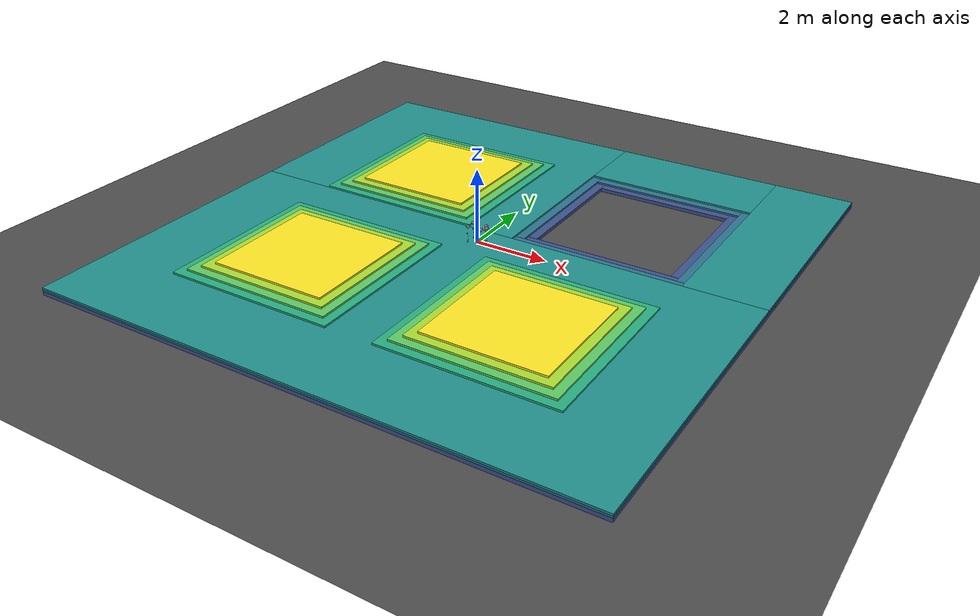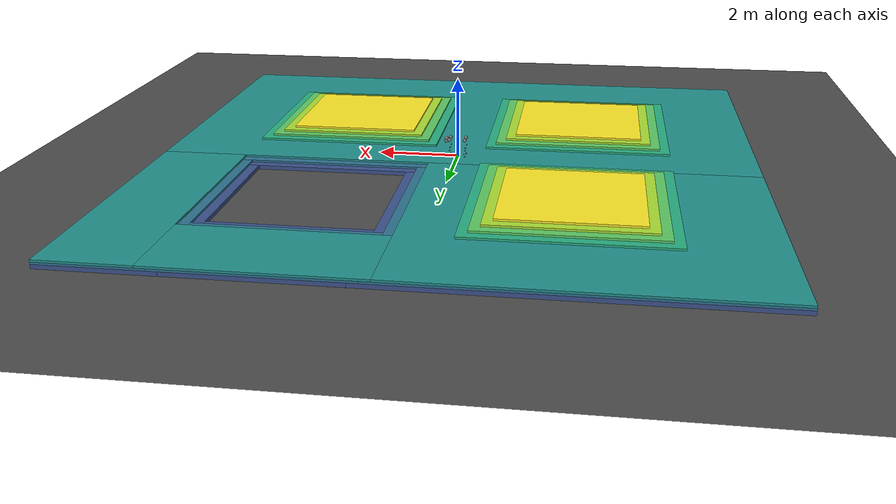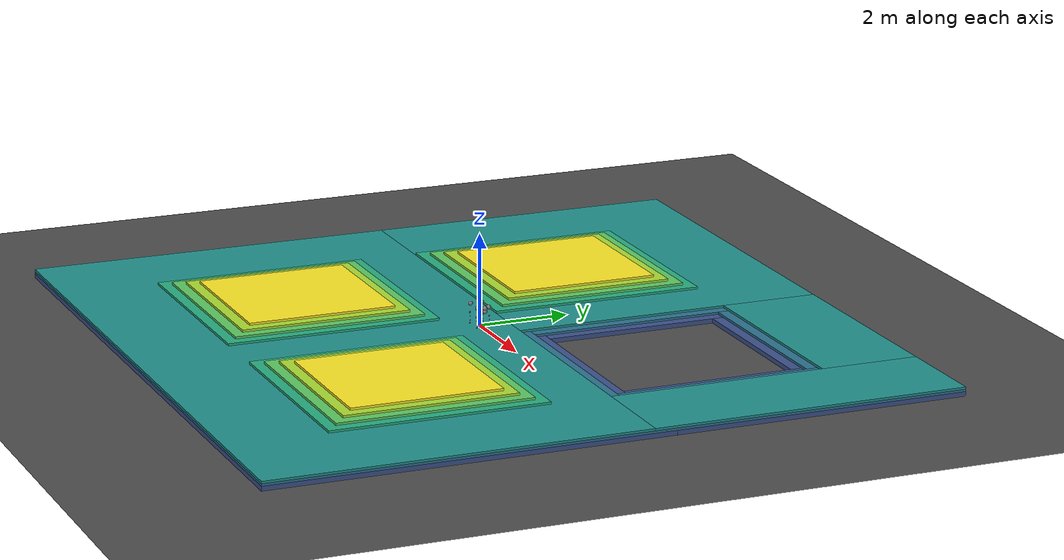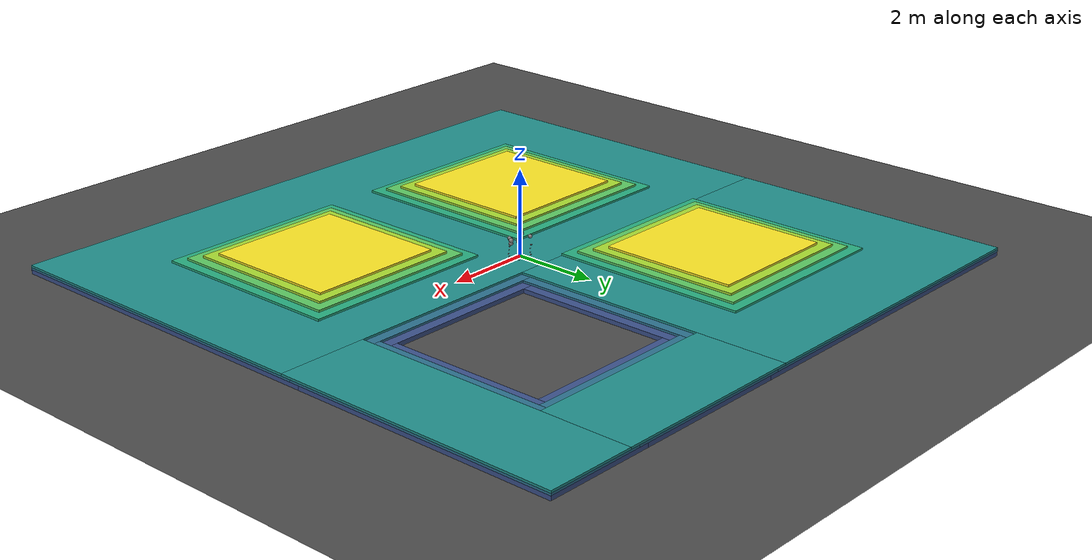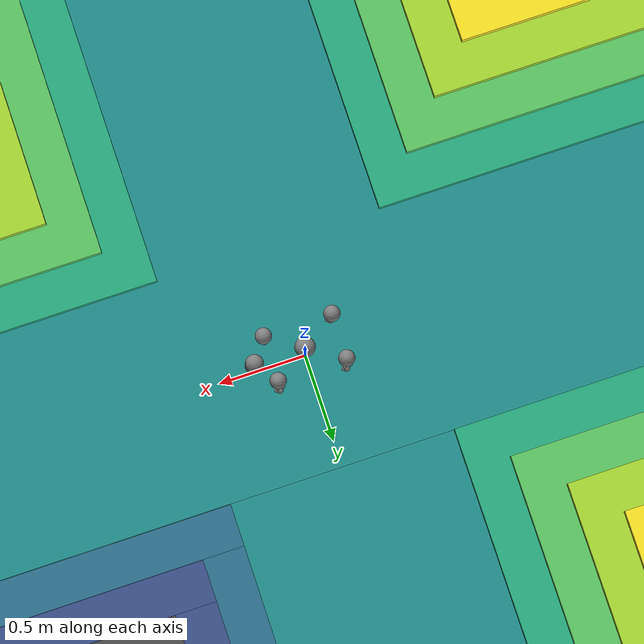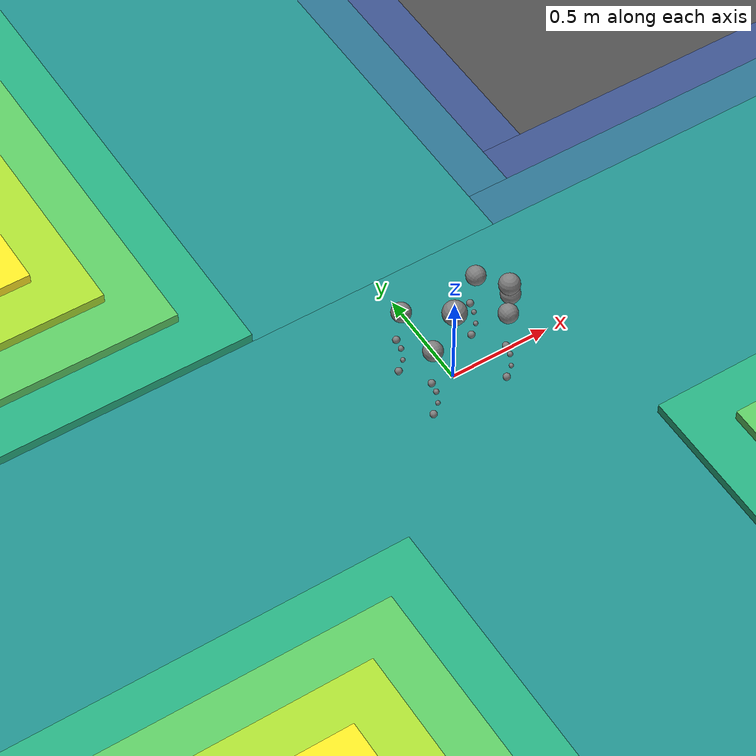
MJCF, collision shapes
<mujoco model="go2 feetonly flat terrain scene">
  <include file="go2_mjx.xml"/>

  <visual>
    <headlight diffuse="0.6 0.6 0.6" ambient="0.3 0.3 0.3" specular="0 0 0"/>
    <rgba haze="0.15 0.25 0.35 1"/>
    <global azimuth="120" elevation="-20"/>
  </visual>

  <default>
    <default class="terrain_box">
      <geom group="2" condim="3" friction="1 0.005 0.0001" type="box"/>
    </default>
  </default>

  <worldbody>
      <body name="terrain_body" pos="0 0 -0.2" quat="1 0 0 0">
        <geom group="2" name="ground_plane" type="plane" size="11.232 11.232 0.1" pos="0 0 0" rgba="0.3 0.3 0.3 1"/>
        <geom group="2" class="terrain_box" pos="0.0000 -3.1851 0.0494" size="7.5000 4.3149 0.0494" rgba="0.232 0.318 0.545 1"/>
        <geom group="2" class="terrain_box" pos="-3.1851 4.3149 0.0494" size="4.3149 3.1851 0.0494" rgba="0.232 0.318 0.545 1"/>
        <geom group="2" class="terrain_box" pos="6.1899 4.3149 0.0494" size="1.3101 3.1851 0.0494" rgba="0.232 0.318 0.545 1"/>
        <geom group="2" class="terrain_box" pos="3.0048 6.1899 0.0494" size="1.8750 1.3101 0.0494" rgba="0.232 0.318 0.545 1"/>
        <geom group="2" class="terrain_box" pos="0.0000 -3.3053 0.1239" size="7.5000 4.1947 0.0251" rgba="0.174 0.445 0.558 1"/>
        <geom group="2" class="terrain_box" pos="-3.3053 4.1947 0.1239" size="4.1947 3.3053 0.0251" rgba="0.174 0.445 0.558 1"/>
        <geom group="2" class="terrain_box" pos="6.3101 4.1947 0.1239" size="1.1899 3.3053 0.0251" rgba="0.174 0.445 0.558 1"/>
        <geom group="2" class="terrain_box" pos="3.0048 6.3101 0.1239" size="2.1154 1.1899 0.0251" rgba="0.174 0.445 0.558 1"/>
        <geom group="2" class="terrain_box" pos="0.0000 -3.4255 0.1741" size="7.5000 4.0745 0.0251" rgba="0.129 0.563 0.551 1"/>
        <geom group="2" class="terrain_box" pos="-3.4255 4.0745 0.1741" size="4.0745 3.4255 0.0251" rgba="0.129 0.563 0.551 1"/>
        <geom group="2" class="terrain_box" pos="6.4303 4.0745 0.1741" size="1.0697 3.4255 0.0251" rgba="0.129 0.563 0.551 1"/>
        <geom group="2" class="terrain_box" pos="3.0048 6.4303 0.1741" size="2.3558 1.0697 0.0251" rgba="0.129 0.563 0.551 1"/>
        <geom group="2" class="terrain_box" pos="-3.0048 -3.0048 0.2243" size="2.3558 2.3558 0.0251" rgba="0.154 0.680 0.504 1"/>
        <geom group="2" class="terrain_box" pos="3.0048 -3.0048 0.2243" size="2.3558 2.3558 0.0251" rgba="0.154 0.680 0.504 1"/>
        <geom group="2" class="terrain_box" pos="-3.0048 3.0048 0.2243" size="2.3558 2.3558 0.0251" rgba="0.154 0.680 0.504 1"/>
        <geom group="2" class="terrain_box" pos="-3.0048 -3.0048 0.2745" size="2.1154 2.1154 0.0251" rgba="0.361 0.786 0.388 1"/>
        <geom group="2" class="terrain_box" pos="3.0048 -3.0048 0.2745" size="2.1154 2.1154 0.0251" rgba="0.361 0.786 0.388 1"/>
        <geom group="2" class="terrain_box" pos="-3.0048 3.0048 0.2745" size="2.1154 2.1154 0.0251" rgba="0.361 0.786 0.388 1"/>
        <geom group="2" class="terrain_box" pos="-3.0048 -3.0048 0.3247" size="1.8750 1.8750 0.0251" rgba="0.668 0.862 0.196 1"/>
        <geom group="2" class="terrain_box" pos="3.0048 -3.0048 0.3247" size="1.8750 1.8750 0.0251" rgba="0.668 0.862 0.196 1"/>
        <geom group="2" class="terrain_box" pos="-3.0048 3.0048 0.3247" size="1.8750 1.8750 0.0251" rgba="0.668 0.862 0.196 1"/>
        <geom group="2" class="terrain_box" pos="-3.0048 -3.0048 0.3749" size="1.6346 1.6346 0.0251" rgba="0.993 0.906 0.144 1"/>
        <geom group="2" class="terrain_box" pos="3.0048 -3.0048 0.3749" size="1.6346 1.6346 0.0251" rgba="0.993 0.906 0.144 1"/>
        <geom group="2" class="terrain_box" pos="-3.0048 3.0048 0.3749" size="1.6346 1.6346 0.0251" rgba="0.993 0.906 0.144 1"/>
      </body>
  </worldbody>

  <keyframe>
    <key name="home"
      qpos="
      0 0 0.278
      1 0 0 0
      0.1 0.9 -1.8
      -0.1 0.9 -1.8
      0.1 0.9 -1.8
      -0.1 0.9 -1.8"
      ctrl="0.1 0.9 -1.8 -0.1 0.9 -1.8 0.1 0.9 -1.8 -0.1 0.9 -1.8"/>
  </keyframe>

</mujoco>

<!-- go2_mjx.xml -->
<mujoco model="go2">
  <compiler angle="radian" autolimits="true"/>

  <option iterations="1" ls_iterations="5" timestep="0.004" integrator="Euler">
    <flag eulerdamp="disable"/>
  </option>

  <custom>
    <numeric data="30" name="max_contact_points"/>
    <numeric data="12" name="max_geom_pairs"/>
  </custom>

  <default>
    <default class="go2">
      <geom condim="1"/>
      <joint axis="0 1 0" damping="2" armature="0.01"/>
      <general forcerange="-24 24" biastype="affine" gainprm="80 0 0" biasprm="0 -80 -1"/>

      <default class="abduction">
        <joint axis="1 0 0" range="-1.0472 1.0472"/>
        <general ctrlrange="-0.9472 0.9472"/>
      </default>
      <default class="hip">
        <joint range="-1.5708 3.4907"/>
        <general ctrlrange="-1.4 2.5"/>
      </default>
      <default class="knee">
        <joint range="-2.7227 -0.83776"/>
        <general ctrlrange="-2.6227 -0.84776"/>
      </default>
      <default class="visual">
        <geom type="mesh" contype="0" conaffinity="0" group="0"/>
      </default>
      <default class="go2foot">
        <site pos="0 0 -0.213" type="sphere" size="0.023" group="5"/>
        <geom rgba="0.231373 0.380392 0.705882 1"/>
      </default>
      <default class="collision">
        <geom group="3"/>
        <default class="foot">
          <geom type="sphere" size="0.0175" pos="-0.002 0 -0.213" solimp="0.9 .95 0.023" condim="3"/>
        </default>
      </default>
    </default>
  </default>

  <asset>
    <material name="metal" rgba=".9 .95 .95 1"/>
    <material name="black" rgba="0 0 0 1"/>
    <material name="white" rgba="1 1 1 1"/>
    <material name="gray" rgba="0.671705 0.692426 0.774270 1"/>

    <mesh file="assets/base_0.obj"/>
    <mesh file="assets/base_1.obj"/>
    <mesh file="assets/base_2.obj"/>
    <mesh file="assets/base_3.obj"/>
    <mesh file="assets/base_4.obj"/>
    <mesh file="assets/hip_0.obj"/>
    <mesh file="assets/hip_1.obj"/>
    <mesh file="assets/thigh_0.obj"/>
    <mesh file="assets/thigh_1.obj"/>
    <mesh file="assets/thigh_mirror_0.obj"/>
    <mesh file="assets/thigh_mirror_1.obj"/>
    <mesh file="assets/calf_0.obj"/>
    <mesh file="assets/calf_1.obj"/>
    <mesh file="assets/calf_mirror_0.obj"/>
    <mesh file="assets/calf_mirror_1.obj"/>
    <mesh file="assets/foot.obj"/>
  </asset>

  <worldbody>
    <light name="spotlight" mode="targetbodycom" target="base" pos="3 0 4"/>
    <body name="base" pos="0 0 0.445" childclass="go2">
      <camera name="track" pos="0.846 -1.465 0.916" xyaxes="0.866 0.500 0.000 -0.171 0.296 0.940" mode="trackcom"/>
      <camera name="head_camera" pos="0.32 0 0.04" xyaxes="0 -1 0 0 0 1"/>
      <inertial pos="0.021112 0 -0.005366" quat="-0.000543471 0.713435 -0.00173769 0.700719" mass="6.921"
        diaginertia="0.107027 0.0980771 0.0244531"/>
      <freejoint/>
      <geom mesh="base_0" material="black" class="visual"/>
      <geom mesh="base_1" material="black" class="visual"/>
      <geom mesh="base_2" material="black" class="visual"/>
      <geom mesh="base_3" material="white" class="visual"/>
      <geom mesh="base_4" material="gray" class="visual"/>
      <geom name="base_collision_0" size="0.057 0.04675 0.057" class="collision"/>
      <geom name="base_collision_1" size="0.05 0.045" pos="0.285 0 0.01" class="collision"/>
      <geom name="base_collision_2" size="0.047" pos="0.293 0 -0.06" class="collision"/>
      <site name="imu" pos="-0.02557 0 0.04232"/>
      <site name="lidar" pos="0.295 0 -0.075" quat="0.05 0 1 0" rgba="1 0 0 1" size="0.005" group="5"/>
      <body name="FL_hip" pos="0.1934 0.0465 0">
        <inertial pos="-0.0054 0.00194 -0.000105" quat="0.497014 0.499245 0.505462 0.498237" mass="0.678"
          diaginertia="0.00088403 0.000596003 0.000479967"/>
        <joint name="FL_hip_joint" class="abduction"/>
        <geom mesh="hip_0" material="metal" class="visual"/>
        <geom mesh="hip_1" material="gray" class="visual"/>
        <geom name="fl_hip_0" size="0.046 0.02" pos="0 0.08 0" quat="1 1 0 0" class="collision"/>
        <body name="FL_thigh" pos="0 0.0955 0">
          <inertial pos="-0.00374 -0.0223 -0.0327" quat="0.829533 0.0847635 -0.0200632 0.551623" mass="1.152"
            diaginertia="0.00594973 0.00584149 0.000878787"/>
          <joint name="FL_thigh_joint" class="hip"/>
          <geom mesh="thigh_0" material="metal" class="visual"/>
          <geom mesh="thigh_1" material="gray" class="visual"/>
          <geom name="fl_thigh_0" size="0.017 0.01225 0.017" pos="-0.015 0 -0.1955" quat="0.707107 0 0.707107 0" class="collision"/>
          <body name="FL_calf" pos="0 0 -0.213">
            <inertial pos="0.00629595 -0.000622121 -0.141417" quat="0.710672 0.00154099 -0.00450087 0.703508"
              mass="0.241352" diaginertia="0.0014901 0.00146356 5.31397e-05"/>
            <joint name="FL_calf_joint" class="knee"/>
            <geom mesh="calf_0" material="gray" class="visual"/>
            <geom mesh="calf_1" material="black" class="visual"/>
            <geom name="fl_calf_0" size="0.012 0.06" pos="0.008 0 -0.06" quat="0.994493 0 -0.104807 0" class="collision"/>
            <geom name="fl_calf_1" size="0.011 0.0325" pos="0.02 0 -0.148" quat="0.999688 0 0.0249974 0" class="collision"/>
            <geom pos="0 0 -0.213" mesh="foot" class="visual" material="black"/>
            <geom name="FL_foot" class="foot"/>
            <site name="FL" class="go2foot"/>
          </body>
        </body>
      </body>
      <body name="FR_hip" pos="0.1934 -0.0465 0">
        <inertial pos="-0.0054 -0.00194 -0.000105" quat="0.498237 0.505462 0.499245 0.497014" mass="0.678"
          diaginertia="0.00088403 0.000596003 0.000479967"/>
        <joint name="FR_hip_joint" class="abduction"/>
        <geom mesh="hip_0" material="metal" class="visual" quat="4.63268e-05 1 0 0"/>
        <geom mesh="hip_1" material="gray" class="visual" quat="4.63268e-05 1 0 0"/>
        <geom name="fr_hip_0" size="0.046 0.02" pos="0 -0.08 0" quat="0.707107 0.707107 0 0" class="collision"/>
        <body name="FR_thigh" pos="0 -0.0955 0">
          <inertial pos="-0.00374 0.0223 -0.0327" quat="0.551623 -0.0200632 0.0847635 0.829533" mass="1.152"
            diaginertia="0.00594973 0.00584149 0.000878787"/>
          <joint name="FR_thigh_joint" class="hip"/>
          <geom mesh="thigh_mirror_0" material="metal" class="visual"/>
          <geom mesh="thigh_mirror_1" material="gray" class="visual"/>
          <geom name="fr_thigh_0" size="0.017 0.01225 0.017" pos="-0.015 0 -0.1955" quat="0.707107 0 0.707107 0" class="collision"/>
          <body name="FR_calf" pos="0 0 -0.213">
            <inertial pos="0.00629595 0.000622121 -0.141417" quat="0.703508 -0.00450087 0.00154099 0.710672"
              mass="0.241352" diaginertia="0.0014901 0.00146356 5.31397e-05"/>
            <joint name="FR_calf_joint" class="knee"/>
            <geom mesh="calf_mirror_0" material="gray" class="visual"/>
            <geom mesh="calf_mirror_1" material="black" class="visual"/>
            <geom name="fr_calf_0" size="0.013 0.06" pos="0.01 0 -0.06" quat="0.995004 0 -0.0998334 0" class="collision"/>
            <geom name="fr_calf_1" size="0.011 0.0325" pos="0.02 0 -0.148" quat="0.999688 0 0.0249974 0" class="collision"/>
            <geom pos="0 0 -0.213" mesh="foot" class="visual" material="black"/>
            <geom name="FR_foot" class="foot"/>
            <site name="FR" class="go2foot"/>
          </body>
        </body>
      </body>
      <body name="RL_hip" pos="-0.1934 0.0465 0">
        <inertial pos="0.0054 0.00194 -0.000105" quat="0.505462 0.498237 0.497014 0.499245" mass="0.678"
          diaginertia="0.00088403 0.000596003 0.000479967"/>
        <joint name="RL_hip_joint" class="abduction"/>
        <geom mesh="hip_0" material="metal" class="visual" quat="4.63268e-05 0 1 0"/>
        <geom mesh="hip_1" material="gray" class="visual" quat="4.63268e-05 0 1 0"/>
        <geom name="rl_hip_0" size="0.046 0.02" pos="0 0.08 0" quat="0.707107 0.707107 0 0" class="collision"/>
        <body name="RL_thigh" pos="0 0.0955 0">
          <inertial pos="-0.00374 -0.0223 -0.0327" quat="0.829533 0.0847635 -0.0200632 0.551623" mass="1.152"
            diaginertia="0.00594973 0.00584149 0.000878787"/>
          <joint name="RL_thigh_joint" class="hip"/>
          <geom mesh="thigh_0" material="metal" class="visual"/>
          <geom mesh="thigh_1" material="gray" class="visual"/>
          <geom name="rl_thigh_0" size="0.017 0.01225 0.017" pos="-0.015 0 -0.1955" quat="0.707107 0 0.707107 0" class="collision"/>
          <body name="RL_calf" pos="0 0 -0.213">
            <inertial pos="0.00629595 -0.000622121 -0.141417" quat="0.710672 0.00154099 -0.00450087 0.703508"
              mass="0.241352" diaginertia="0.0014901 0.00146356 5.31397e-05"/>
            <joint name="RL_calf_joint" class="knee"/>
            <geom mesh="calf_0" material="gray" class="visual"/>
            <geom mesh="calf_1" material="black" class="visual"/>
            <geom name="rl_calf_0" size="0.013 0.06" pos="0.01 0 -0.06" quat="0.995004 0 -0.0998334 0" class="collision"/>
            <geom name="rl_calf_1" size="0.011 0.0325" pos="0.02 0 -0.148" quat="0.999688 0 0.0249974 0" class="collision"/>
            <geom pos="0 0 -0.213" mesh="foot" class="visual" material="black"/>
            <geom name="RL_foot" class="foot"/>
            <site name="RL" class="go2foot"/>
          </body>
        </body>
      </body>
      <body name="RR_hip" pos="-0.1934 -0.0465 0">
        <inertial pos="0.0054 -0.00194 -0.000105" quat="0.499245 0.497014 0.498237 0.505462" mass="0.678"
          diaginertia="0.00088403 0.000596003 0.000479967"/>
        <joint name="RR_hip_joint" class="abduction"/>
        <geom mesh="hip_0" material="metal" class="visual" quat="2.14617e-09 4.63268e-05 4.63268e-05 -1"/>
        <geom mesh="hip_1" material="gray" class="visual" quat="2.14617e-09 4.63268e-05 4.63268e-05 -1"/>
        <geom name="rr_hip_0" size="0.046 0.02" pos="0 -0.08 0" quat="0.707107 0.707107 0 0" class="collision"/>
        <body name="RR_thigh" pos="0 -0.0955 0">
          <inertial pos="-0.00374 0.0223 -0.0327" quat="0.551623 -0.0200632 0.0847635 0.829533" mass="1.152"
            diaginertia="0.00594973 0.00584149 0.000878787"/>
          <joint name="RR_thigh_joint" class="hip"/>
          <geom mesh="thigh_mirror_0" material="metal" class="visual"/>
          <geom mesh="thigh_mirror_1" material="gray" class="visual"/>
          <geom name="rr_thigh_0" size="0.017 0.01225 0.017" pos="-0.015 0 -0.1955" quat="0.707107 0 0.707107 0" class="collision"/>
          <body name="RR_calf" pos="0 0 -0.213">
            <inertial pos="0.00629595 0.000622121 -0.141417" quat="0.703508 -0.00450087 0.00154099 0.710672"
              mass="0.241352" diaginertia="0.0014901 0.00146356 5.31397e-05"/>
            <joint name="RR_calf_joint" class="knee"/>
            <geom mesh="calf_mirror_0" material="gray" class="visual"/>
            <geom mesh="calf_mirror_1" material="black" class="visual"/>
            <geom name="rr_calf_0" size="0.013 0.06" pos="0.01 0 -0.06" quat="0.995004 0 -0.0998334 0" class="collision"/>
            <geom name="rr_calf_1" size="0.011 0.0325" pos="0.02 0 -0.148" quat="0.999688 0 0.0249974 0" class="collision"/>
            <geom pos="0 0 -0.213" mesh="foot" class="visual" material="black"/>
            <geom name="RR_foot" class="foot"/>
            <site name="RR" class="go2foot"/>
          </body>
        </body>
      </body>
    </body>
  </worldbody>

  <actuator>
    <motor class="abduction" name="FL_hip" joint="FL_hip_joint"/>
    <motor class="hip" name="FL_thigh" joint="FL_thigh_joint"/>
    <motor class="knee" name="FL_calf" joint="FL_calf_joint"/>
    <motor class="abduction" name="FR_hip" joint="FR_hip_joint"/>
    <motor class="hip" name="FR_thigh" joint="FR_thigh_joint"/>
    <motor class="knee" name="FR_calf" joint="FR_calf_joint"/>
    <motor class="abduction" name="RL_hip" joint="RL_hip_joint"/>
    <motor class="hip" name="RL_thigh" joint="RL_thigh_joint"/>
    <motor class="knee" name="RL_calf" joint="RL_calf_joint"/>
    <motor class="abduction" name="RR_hip" joint="RR_hip_joint"/>
    <motor class="hip" name="RR_thigh" joint="RR_thigh_joint"/>
    <motor class="knee" name="RR_calf" joint="RR_calf_joint"/>
  </actuator>

  <sensor>
    <jointpos joint="FL_hip_joint" name="abduction_front_left_pos"/>
    <jointpos joint="FL_thigh_joint" name="hip_front_left_pos"/>
    <jointpos joint="FL_calf_joint" name="knee_front_left_pos"/>
    <jointpos joint="RL_hip_joint" name="abduction_hind_left_pos"/>
    <jointpos joint="RL_thigh_joint" name="hip_hind_left_pos"/>
    <jointpos joint="RL_calf_joint" name="knee_hind_left_pos"/>
    <jointpos joint="FR_hip_joint" name="abduction_front_right_pos"/>
    <jointpos joint="FR_thigh_joint" name="hip_front_right_pos"/>
    <jointpos joint="FR_calf_joint" name="knee_front_right_pos"/>
    <jointpos joint="RR_hip_joint" name="abduction_hind_right_pos"/>
    <jointpos joint="RR_thigh_joint" name="hip_hind_right_pos"/>
    <jointpos joint="RR_calf_joint" name="knee_hind_right_pos"/>
    <jointvel joint="FL_hip_joint" name="abduction_front_left_vel"/>
    <jointvel joint="FL_thigh_joint" name="hip_front_left_vel"/>
    <jointvel joint="FL_calf_joint" name="knee_front_left_vel"/>
    <jointvel joint="RL_hip_joint" name="abduction_hind_left_vel"/>
    <jointvel joint="RL_thigh_joint" name="hip_hind_left_vel"/>
    <jointvel joint="RL_calf_joint" name="knee_hind_left_vel"/>
    <jointvel joint="FR_hip_joint" name="abduction_front_right_vel"/>
    <jointvel joint="FR_thigh_joint" name="hip_front_right_vel"/>
    <jointvel joint="FR_calf_joint" name="knee_front_right_vel"/>
    <jointvel joint="RR_hip_joint" name="abduction_hind_right_vel"/>
    <jointvel joint="RR_thigh_joint" name="hip_hind_right_vel"/>
    <jointvel joint="RR_calf_joint" name="knee_hind_right_vel"/>

    <gyro site="imu" name="gyro"/>
    <accelerometer site="imu" name="accelerometer"/>
    <velocimeter site="imu" name="local_linvel"/>
    <framezaxis objtype="site" objname="imu" name="upvector"/>
    <framequat objtype="site" objname="imu" name="orientation"/>
    <framepos objtype="site" objname="imu" name="global_position"/>
    <framelinvel objtype="site" objname="imu" name="global_linvel"/>
    <frameangvel objtype="site" objname="imu" name="global_angvel"/>

    <framelinvel objtype="site" objname="FR" name="FR_global_linvel"/>
    <framelinvel objtype="site" objname="FL" name="FL_global_linvel"/>
    <framelinvel objtype="site" objname="RR" name="RR_global_linvel"/>
    <framelinvel objtype="site" objname="RL" name="RL_global_linvel"/>

    <framepos objtype="site" objname="FR" name="FR_pos" reftype="site" refname="imu"/>
    <framepos objtype="site" objname="FL" name="FL_pos" reftype="site" refname="imu"/>
    <framepos objtype="site" objname="RR" name="RR_pos" reftype="site" refname="imu"/>
    <framepos objtype="site" objname="RL" name="RL_pos" reftype="site" refname="imu"/>
  </sensor>
</mujoco>
